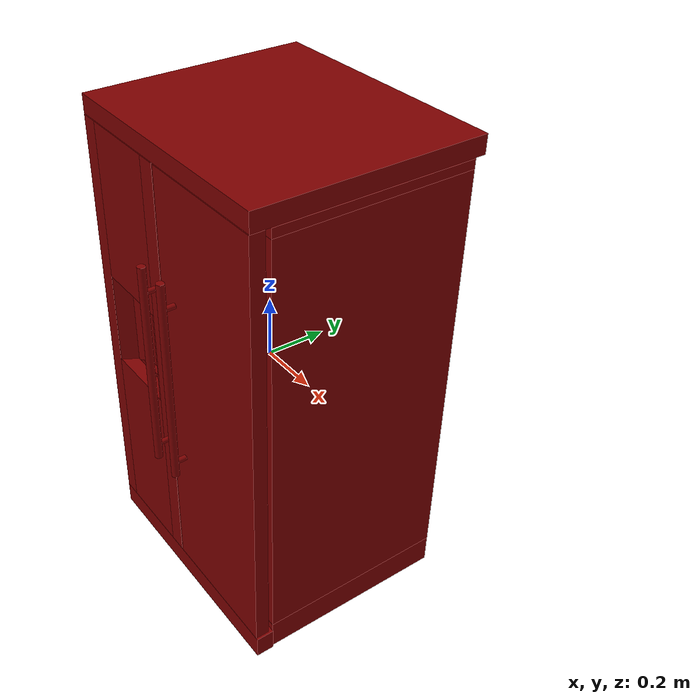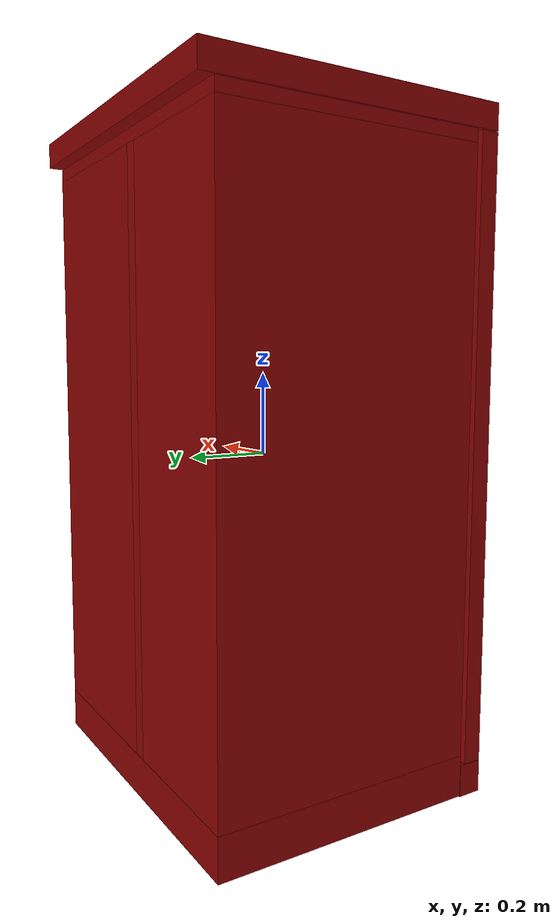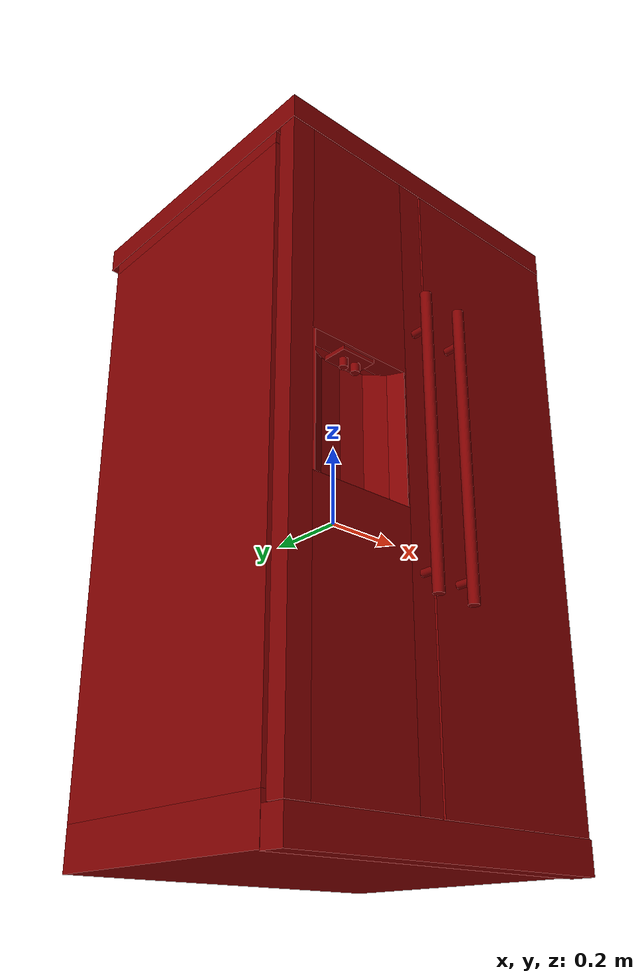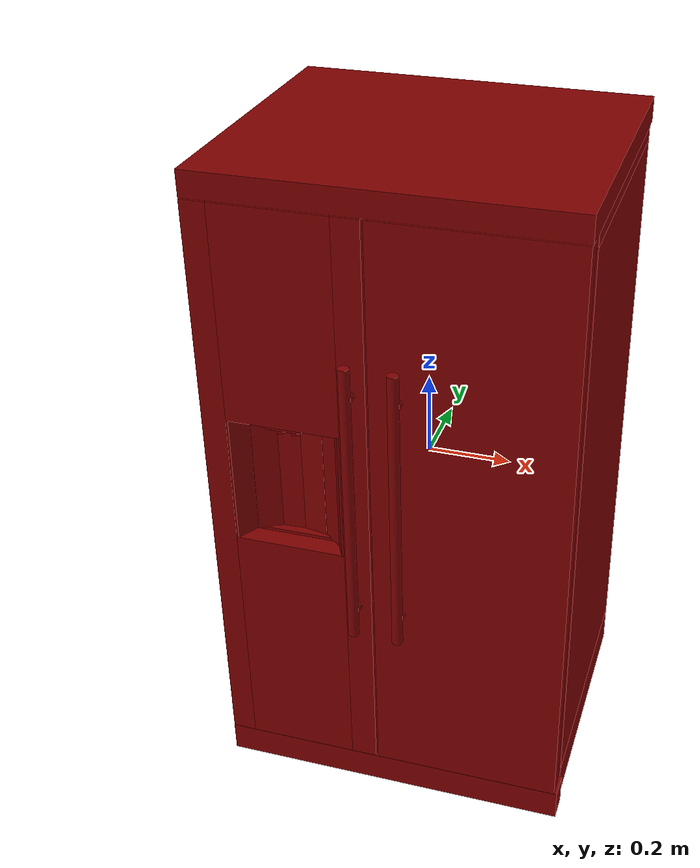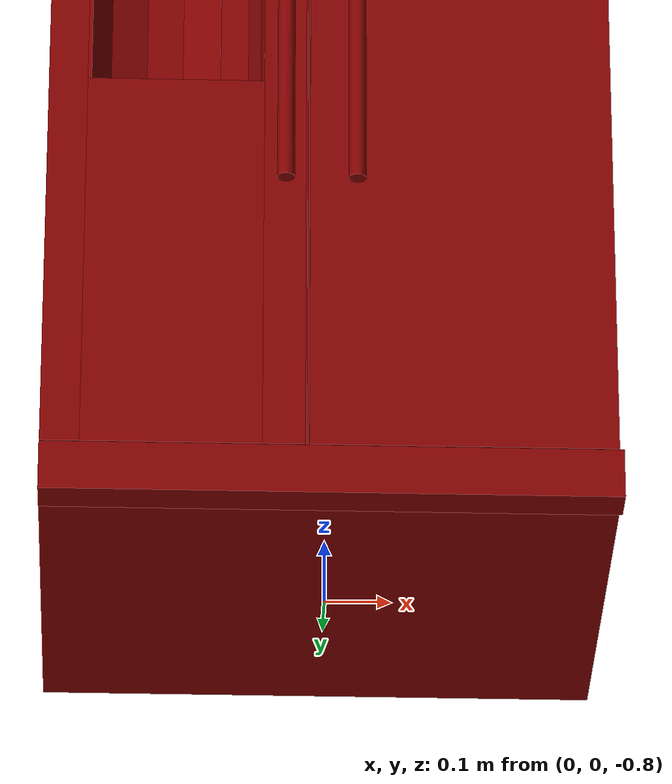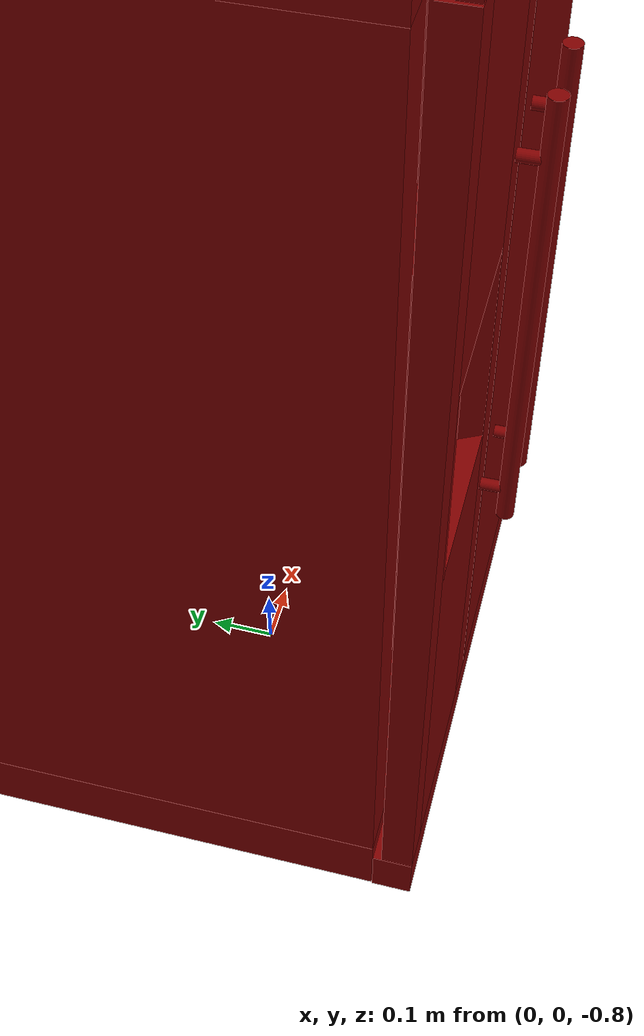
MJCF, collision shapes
<mujoco model="model">
  <compiler angle="radian"/>
  <asset>
    <mesh file="visuals/Body001.obj" name="Body001_vis"/>
    <mesh file="visuals/Body001_Clear.obj" name="Body001_Clear_vis"/>
    <mesh file="visuals/Door001.obj" name="Door001_vis"/>
    <mesh file="visuals/Door002.obj" name="Door002_vis"/>
    <mesh file="visuals/Drawer001.obj" name="Drawer001_vis"/>
    <mesh file="visuals/Drawer002.obj" name="Drawer002_vis"/>
    <mesh file="visuals/Drawer003.obj" name="Drawer003_vis"/>
    <mesh file="visuals/Drawer004.obj" name="Drawer004_vis"/>
    <texture file="visuals/T_BC001.png" name="Body001_material" type="2d"/>
    <material name="Body001_material" rgba="1 1 1 1.0" texture="Body001_material" shininess="0.5" specular="0.8"/>
    <texture file="visuals/T_BC001.png" name="Body001_Clear_material" type="2d"/>
    <material name="Body001_Clear_material" rgba="1 1 1 0.5272727012634277" texture="Body001_Clear_material" shininess="0.5" specular="0.8"/>
    <texture file="visuals/T_BC001.png" name="Door001_material" type="2d"/>
    <material name="Door001_material" rgba="1 1 1 1.0" texture="Door001_material" shininess="0.5" specular="0.8"/>
    <texture file="visuals/T_BC001.png" name="Door002_material" type="2d"/>
    <material name="Door002_material" rgba="1 1 1 1.0" texture="Door002_material" shininess="0.5" specular="0.8"/>
    <texture file="visuals/T_BC001.png" name="Drawer001_material" type="2d"/>
    <material name="Drawer001_material" rgba="1 1 1 1.0" texture="Drawer001_material" shininess="0.5" specular="0.8"/>
    <texture file="visuals/T_BC001.png" name="Drawer002_material" type="2d"/>
    <material name="Drawer002_material" rgba="1 1 1 1.0" texture="Drawer002_material" shininess="0.5" specular="0.8"/>
    <texture file="visuals/T_BC001.png" name="Drawer003_material" type="2d"/>
    <material name="Drawer003_material" rgba="1 1 1 1.0" texture="Drawer003_material" shininess="0.5" specular="0.8"/>
    <texture file="visuals/T_BC001.png" name="Drawer004_material" type="2d"/>
    <material name="Drawer004_material" rgba="1 1 1 1.0" texture="Drawer004_material" shininess="0.5" specular="0.8"/>
  </asset>
  <default>
    <default class="visual">
      <geom conaffinity="0" contype="0" group="1" type="mesh"/>
    </default>
    <default class="collision">
      <geom group="0" rgba="0.5 0 0 0.5"/>
    </default>
    <default class="spawn">
      <geom group="0" rgba="1 1 1 0.5" contype="0" conaffinity="0"/>
      <site group="0" rgba="1 1 1 0.5"/>
    </default>
    <default class="region">
      <geom group="1" conaffinity="0" contype="0" rgba="0 1 0 0"/>
    </default>
  </default>
  <worldbody>
    <body>
      <body name="object">
        <geom mesh="Body001_vis" type="mesh" solimp="0.998 0.998 0.001" solref="0.001 1" density="100" friction="0.95 0.3 0.1" class="visual" material="Body001_material"/>
        <geom class="collision" type="box" pos="0.384447 0.039981 0.005188" size="0.035853948444128036 0.322449654340744 0.6934295892715454" quat="1.0 0.0 0.0 0.0"/>
        <geom class="collision" type="box" pos="-0.002146 0.026179 0.760373" size="0.4224463999271393 0.36914530396461487 0.029827851802110672" quat="1.0 0.0 0.0 0.0"/>
        <geom class="collision" type="box" pos="-0.000047 -0.313338 -0.751950" size="0.4249330759048462 0.029750250279903412 0.03825020417571068" quat="1.0 0.0 0.0 0.0"/>
        <geom class="collision" type="box" pos="-0.002146 0.039981 0.713600" size="0.4224463105201721 0.32244962453842163 0.01498262956738472" quat="1.0 0.0 0.0 0.0"/>
        <geom class="collision" type="box" pos="-0.002146 0.039981 -0.737989" size="0.4224463105201721 0.32244962453842163 0.049747247248888016" quat="1.0 0.0 0.0 0.0"/>
        <geom class="collision" type="box" pos="-0.041779 0.042129 0.005596" size="0.018529389053583145 0.32030245661735535 0.6938378810882568" quat="1.0 0.0 0.0 0.0"/>
        <geom class="collision" type="box" pos="-0.390564 0.039981 0.005188" size="0.03402850031852722 0.322449654340744 0.6934296488761902" quat="1.0 0.0 0.0 0.0"/>
        <geom class="collision" type="box" pos="-0.002146 0.058520 0.379201" size="0.38787147402763367 0.27719253301620483 0.009626409038901329" quat="1.0 0.0 0.0 0.0"/>
        <geom class="collision" type="box" pos="-0.002146 0.059233 0.034679" size="0.38787147402763367 0.276479035615921 0.009626412764191628" quat="1.0 0.0 0.0 0.0"/>
        <geom class="collision" type="box" pos="-0.002146 0.056787 -0.292049" size="0.38787147402763367 0.2789252698421478 0.00909482128918171" quat="1.0 0.0 0.0 0.0"/>
        <geom class="collision" type="box" pos="-0.002146 0.351071 0.004949" size="0.4224463105201721 0.0113602876663208 0.6936686038970947" quat="1.0 0.0 0.0 0.0"/>
        <geom class="collision" type="box" pos="-0.005694 0.056787 -0.486730" size="0.3503202795982361 0.2789252698421478 0.0028798189014196396" quat="1.0 0.0 0.0 0.0"/>
        <body name="Body001_Clear">
          <geom mesh="Body001_Clear_vis" type="mesh" solimp="0.998 0.998 0.001" solref="0.001 1" density="100" friction="0.95 0.3 0.1" class="visual" material="Body001_Clear_material"/>
        </body>
        <body name="Door001">
          <joint axis="0.0 0.0 -1.0" pos="-0.396190 -0.327607 0.008800" limited="true" name="Door001_joint" range="0.0 1.5707963267948966" type="hinge" damping="1" frictionloss="1" armature=".01" stiffness="0.05"/>
          <geom mesh="Door001_vis" type="mesh" solimp="0.998 0.998 0.001" solref="0.001 1" density="100" friction="0.95 0.3 0.1" class="visual" material="Door001_material"/>
          <geom class="collision" type="cylinder" pos="-0.069935 -0.382677 0.063737" size="0.012895453721284866 0.3521200120449066" quat="1.0 0.0 0.0 0.0"/>
          <geom class="collision" type="cylinder" pos="-0.069935 -0.358617 0.328316" size="0.008896256797015667 0.019566046074032784" quat="0.7071068286895752 -0.7071067690849304 1.5700924318127872e-16 -5.9269340452702814e-24"/>
          <geom class="collision" type="cylinder" pos="-0.069935 -0.358617 -0.235202" size="0.008896256797015667 0.019566046074032784" quat="0.7071068286895752 -0.7071067690849304 1.5700924318127872e-16 -5.9269340452702814e-24"/>
          <geom class="collision" type="cylinder" pos="-0.250494 -0.306395 0.197417" size="0.010181399993598461 0.010181399993598461" quat="1.0 0.0 0.0 0.0"/>
          <geom class="collision" type="cylinder" pos="-0.217067 -0.306395 0.197417" size="0.010181399993598461 0.010181399993598461" quat="1.0 0.0 0.0 0.0"/>
          <geom class="collision" type="box" pos="-0.070247 -0.313268 0.007730" size="0.03128736466169357 0.029820457100868225 0.7201703786849976" quat="1.0 0.0 0.0 0.0"/>
          <geom class="collision" type="box" pos="-0.216668 -0.257458 0.131649" size="0.11925533413887024 0.003282485529780388 0.23824262619018555" quat="1.0 0.0 0.0 0.0"/>
          <geom class="collision" type="box" pos="-0.234156 -0.318759 0.472571" size="0.13262173533439636 0.02432965114712715 0.2553291320800781" quat="1.0 0.0 0.0 0.0"/>
          <geom class="collision" type="box" pos="-0.234156 -0.318759 -0.405989" size="0.13262173533439636 0.02432965114712715 0.3064519762992859" quat="1.0 0.0 0.0 0.0"/>
          <geom class="collision" type="box" pos="-0.395722 -0.319683 0.007730" size="0.028943806886672974 0.02340586483478546 0.7201703786849976" quat="1.0 0.0 0.0 0.0"/>
          <geom class="collision" type="box" pos="-0.104125 -0.270755 0.131649" size="0.0067124078050255775 0.015388263389468193 0.23824262619018555" quat="1.0 0.0 0.0 0.0"/>
          <geom class="collision" type="box" pos="-0.346023 -0.270755 0.131649" size="0.006712410133332014 0.015388268046081066 0.23824262619018555" quat="1.0 0.0 0.0 0.0"/>
          <geom class="collision" type="box" pos="-0.232658 -0.270755 0.360391" size="0.12181933969259262 0.015388261526823044 0.00950080156326294" quat="1.0 0.0 0.0 0.0"/>
          <geom class="collision" type="box" pos="-0.233484 -0.306259 0.212625" size="0.04262097552418709 0.029891489073634148 0.0052091944962739944" quat="1.0 0.0 0.0 0.0"/>
          <geom class="collision" type="box" pos="-0.349764 -0.316251 0.057580" size="0.003867596387863159 0.029820457100868225 0.15966156125068665" quat="0.966834306716919 0.0 -0.0 -0.25540444254875183"/>
          <geom class="collision" type="box" pos="-0.306785 -0.277688 0.057580" size="0.003867596387863159 0.029820457100868225 0.15966156125068665" quat="0.8436958193778992 0.0 -0.0 -0.5368215441703796"/>
          <geom class="collision" type="box" pos="-0.253131 -0.263256 0.057580" size="0.003867596387863159 0.029820457100868225 0.15966156125068665" quat="0.7231791019439697 0.0 -0.0 -0.6906605362892151"/>
          <geom class="collision" type="box" pos="-0.196052 -0.267210 0.057580" size="0.003867596387863159 0.029820457100868225 0.15966156125068665" quat="0.6374496817588806 0.0 -0.0 -0.7704920172691345"/>
          <geom class="collision" type="box" pos="-0.145048 -0.288207 0.057580" size="0.003867596387863159 0.029820457100868225 0.15966156125068665" quat="0.4350873529911041 0.0 -0.0 -0.900388240814209"/>
          <geom class="collision" type="box" pos="-0.117706 -0.315255 0.057580" size="0.003867596387863159 0.029820457100868225 0.15966156125068665" quat="0.2398415058851242 0.0 -0.0 -0.9708120822906494"/>
          <geom class="collision" type="box" pos="-0.231216 -0.271984 -0.107197" size="0.12037744373083115 0.015388283878564835 0.00950080156326294" quat="1.0 0.0 0.0 0.0"/>
        </body>
        <body name="Door002">
          <joint axis="0.0 0.0 1.0" pos="0.394987 -0.323332 0.008801" limited="true" name="Door002_joint" range="0.0 1.5707963267948966" type="hinge" damping="1" frictionloss="1" armature=".01" stiffness="0.05"/>
          <geom mesh="Door002_vis" type="mesh" solimp="0.998 0.998 0.001" solref="0.001 1" density="100" friction="0.95 0.3 0.1" class="visual" material="Door002_material"/>
          <geom class="collision" type="cylinder" pos="0.036185 -0.382677 0.063737" size="0.012895453721284866 0.3521200120449066" quat="1.0 0.0 0.0 0.0"/>
          <geom class="collision" type="cylinder" pos="0.036185 -0.358617 0.328316" size="0.008896256797015667 0.019566046074032784" quat="0.7071068286895752 -0.7071067690849304 1.5700924318127872e-16 -5.9269340452702814e-24"/>
          <geom class="collision" type="cylinder" pos="0.036185 -0.358617 -0.235202" size="0.008896256797015667 0.019566046074032784" quat="0.7071068286895752 -0.7071067690849304 1.5700924318127872e-16 -5.9269340452702814e-24"/>
          <geom class="collision" type="box" pos="0.192527 -0.319772 0.007730" size="0.22564460337162018 0.023316770792007446 0.7201703786849976" quat="1.0 0.0 0.0 0.0"/>
          <geom class="collision" type="box" pos="0.179985 -0.263814 0.392539" size="0.14785245060920715 0.028714507818222046 0.006003677845001221" quat="1.0 0.0 0.0 0.0"/>
          <geom class="collision" type="box" pos="0.170222 -0.295476 0.007730" size="0.20486129820346832 0.007539153099060059 0.7201703786849976" quat="1.0 0.0 0.0 0.0"/>
          <geom class="collision" type="box" pos="0.179985 -0.232848 0.431091" size="0.14785245060920715 0.0055883899331092834 0.035769760608673096" quat="1.0 0.0 0.0 0.0"/>
          <geom class="collision" type="box" pos="0.333036 -0.263814 0.426698" size="0.005198165774345398 0.028714507818222046 0.04016253352165222" quat="1.0 0.0 0.0 0.0"/>
          <geom class="collision" type="box" pos="0.025692 -0.263814 0.426698" size="0.006441004574298859 0.028714507818222046 0.04016253352165222" quat="1.0 0.0 0.0 0.0"/>
          <geom class="collision" type="box" pos="0.179985 -0.263814 0.171327" size="0.14785245060920715 0.028714507818222046 0.006003677845001221" quat="1.0 0.0 0.0 0.0"/>
          <geom class="collision" type="box" pos="0.179985 -0.232848 0.209879" size="0.14785245060920715 0.0055883899331092834 0.035769760608673096" quat="1.0 0.0 0.0 0.0"/>
          <geom class="collision" type="box" pos="0.333036 -0.263814 0.205486" size="0.005198165774345398 0.028714507818222046 0.04016253352165222" quat="1.0 0.0 0.0 0.0"/>
          <geom class="collision" type="box" pos="0.025692 -0.263814 0.205486" size="0.006441004574298859 0.028714507818222046 0.04016253352165222" quat="1.0 0.0 0.0 0.0"/>
        </body>
        <body name="Drawer001">
          <joint axis="0.0 -1.0 0.0" pos="-0.221807 0.067204 -0.397627" limited="true" name="Drawer001_joint" range="0.0 0.4" type="slide" damping="1" frictionloss="1" armature=".01" stiffness="0.05"/>
          <geom mesh="Drawer001_vis" type="mesh" solimp="0.998 0.998 0.001" solref="0.001 1" density="100" friction="0.95 0.3 0.1" class="visual" material="Drawer001_material"/>
          <geom class="collision" type="box" pos="-0.075583 0.053689 -0.397243" size="0.014491543173789978 0.26361486315727234 0.0834193155169487" quat="1.0 0.0 0.0 0.0"/>
          <geom class="collision" type="box" pos="-0.339817 0.053689 -0.397243" size="0.014491543173789978 0.26361486315727234 0.0834193155169487" quat="1.0 0.0 0.0 0.0"/>
          <geom class="collision" type="box" pos="-0.207270 0.310766 -0.397243" size="0.1455812156200409 0.014491554349660873 0.0834193006157875" quat="1.0 0.0 0.0 0.0"/>
          <geom class="collision" type="box" pos="-0.207962 0.053689 -0.466983" size="0.14472800493240356 0.26361367106437683 0.014491483569145203" quat="1.0 0.0 0.0 0.0"/>
          <geom class="collision" type="box" pos="-0.207728 -0.207921 -0.331549" size="0.1183638945221901 0.002435504226014018 0.01742434874176979" quat="1.0 0.0 0.0 0.0"/>
          <geom class="collision" type="box" pos="-0.207728 -0.198197 -0.420944" size="0.11836452782154083 0.011783481575548649 0.03304709866642952" quat="1.0 0.0 0.0 0.0"/>
          <geom class="collision" type="box" pos="-0.207728 -0.184131 -0.383586" size="0.11836390942335129 0.002435503527522087 0.06916751712560654" quat="1.0 0.0 0.0 0.0"/>
          <geom class="collision" type="box" pos="-0.106545 -0.196284 -0.355394" size="0.017714573070406914 0.01419044379144907 0.0314192958176136" quat="1.0 0.0 0.0 0.0"/>
          <geom class="collision" type="box" pos="-0.310585 -0.196284 -0.355394" size="0.017714573070406914 0.014190444722771645 0.0314192958176136" quat="1.0 0.0 0.0 0.0"/>
          <geom class="collision" type="box" pos="-0.208689 -0.185103 -0.359549" size="0.08508295565843582 0.0032333543058484793 0.030308986082673073" quat="1.0 0.0 0.0 0.0"/>
          <geom class="collision" type="box" pos="-0.207728 -0.196354 -0.323737" size="0.11836446821689606 0.009998190216720104 0.009799218736588955" quat="1.0 0.0 0.0 0.0"/>
        </body>
        <body name="Drawer002">
          <joint axis="0.0 -1.0 0.0" pos="-0.221807 0.067204 -0.578172" limited="true" name="Drawer002_joint" range="0.0 0.4" type="slide" damping="1" frictionloss="1" armature=".01" stiffness="0.05"/>
          <geom mesh="Drawer002_vis" type="mesh" solimp="0.998 0.998 0.001" solref="0.001 1" density="100" friction="0.95 0.3 0.1" class="visual" material="Drawer002_material"/>
          <geom class="collision" type="box" pos="-0.075583 0.053689 -0.576869" size="0.014491543173789978 0.26361486315727234 0.0834193155169487" quat="1.0 0.0 0.0 0.0"/>
          <geom class="collision" type="box" pos="-0.339817 0.053689 -0.576869" size="0.014491543173789978 0.26361486315727234 0.0834193155169487" quat="1.0 0.0 0.0 0.0"/>
          <geom class="collision" type="box" pos="-0.207270 0.310766 -0.576869" size="0.1455812156200409 0.014491554349660873 0.0834193006157875" quat="1.0 0.0 0.0 0.0"/>
          <geom class="collision" type="box" pos="-0.207962 0.053689 -0.646608" size="0.14472800493240356 0.2636139392852783 0.014491499401628971" quat="1.0 0.0 0.0 0.0"/>
          <geom class="collision" type="box" pos="-0.207728 -0.207921 -0.511175" size="0.1183638945221901 0.002435500267893076 0.017424333840608597" quat="1.0 0.0 0.0 0.0"/>
          <geom class="collision" type="box" pos="-0.207728 -0.198197 -0.600570" size="0.1183643713593483 0.011783481575548649 0.03304706886410713" quat="1.0 0.0 0.0 0.0"/>
          <geom class="collision" type="box" pos="-0.207728 -0.184131 -0.563212" size="0.11836390942335129 0.002435499569401145 0.06916751712560654" quat="1.0 0.0 0.0 0.0"/>
          <geom class="collision" type="box" pos="-0.106545 -0.196284 -0.535019" size="0.017714573070406914 0.014190453104674816 0.0314192958176136" quat="1.0 0.0 0.0 0.0"/>
          <geom class="collision" type="box" pos="-0.310585 -0.196284 -0.535019" size="0.017714573070406914 0.01419045403599739 0.0314192958176136" quat="1.0 0.0 0.0 0.0"/>
          <geom class="collision" type="box" pos="-0.208689 -0.185103 -0.539175" size="0.08508295565843582 0.0032333543058484793 0.030308986082673073" quat="1.0 0.0 0.0 0.0"/>
          <geom class="collision" type="box" pos="-0.207728 -0.196354 -0.503363" size="0.11836431175470352 0.009998190216720104 0.009799210354685783" quat="1.0 0.0 0.0 0.0"/>
        </body>
        <body name="Drawer003">
          <joint axis="0.0 -1.0 0.0" pos="0.175621 0.067204 -0.397627" limited="true" name="Drawer003_joint" range="0.0 0.4" type="slide" damping="1" frictionloss="1" armature=".01" stiffness="0.05"/>
          <geom mesh="Drawer003_vis" type="mesh" solimp="0.998 0.998 0.001" solref="0.001 1" density="100" friction="0.95 0.3 0.1" class="visual" material="Drawer003_material"/>
          <geom class="collision" type="box" pos="0.321901 0.053689 -0.396298" size="0.014491543173789978 0.26361486315727234 0.0834193155169487" quat="1.0 0.0 0.0 0.0"/>
          <geom class="collision" type="box" pos="-0.001311 0.053689 -0.396298" size="0.014491543173789978 0.26361486315727234 0.0834193155169487" quat="1.0 0.0 0.0 0.0"/>
          <geom class="collision" type="box" pos="0.165343 0.310766 -0.396298" size="0.1455812156200409 0.014491554349660873 0.0834193006157875" quat="1.0 0.0 0.0 0.0"/>
          <geom class="collision" type="box" pos="0.164651 0.053689 -0.466038" size="0.14472800493240356 0.2636142373085022 0.014491516165435314" quat="1.0 0.0 0.0 0.0"/>
          <geom class="collision" type="box" pos="0.164885 -0.207921 -0.330604" size="0.1183638945221901 0.002435496309772134 0.017424317076802254" quat="1.0 0.0 0.0 0.0"/>
          <geom class="collision" type="box" pos="0.164885 -0.198197 -0.419999" size="0.14797642827033997 0.011783466674387455 0.03304697945713997" quat="1.0 0.0 0.0 0.0"/>
          <geom class="collision" type="box" pos="0.164885 -0.184131 -0.382641" size="0.11836390942335129 0.002435495611280203 0.06916751712560654" quat="1.0 0.0 0.0 0.0"/>
          <geom class="collision" type="box" pos="0.278398 -0.196284 -0.354449" size="0.027425065636634827 0.014190511777997017 0.03141935169696808" quat="1.0 0.0 0.0 0.0"/>
          <geom class="collision" type="box" pos="0.032389 -0.196284 -0.354449" size="0.017714573070406914 0.014190463349223137 0.0314192958176136" quat="1.0 0.0 0.0 0.0"/>
          <geom class="collision" type="box" pos="0.163924 -0.185103 -0.358604" size="0.10063748806715012 0.0032333543058484793 0.030308986082673073" quat="1.0 0.0 0.0 0.0"/>
          <geom class="collision" type="box" pos="0.164885 -0.196354 -0.322792" size="0.14914390444755554 0.009998197667300701 0.009799190796911716" quat="1.0 0.0 0.0 0.0"/>
        </body>
        <body name="Drawer004">
          <joint axis="0.0 -1.0 0.0" pos="0.175621 0.067204 -0.578172" limited="true" name="Drawer004_joint" range="0.0 0.4" type="slide" damping="1" frictionloss="1" armature=".01" stiffness="0.05"/>
          <geom mesh="Drawer004_vis" type="mesh" solimp="0.998 0.998 0.001" solref="0.001 1" density="100" friction="0.95 0.3 0.1" class="visual" material="Drawer004_material"/>
          <geom class="collision" type="box" pos="0.321901 0.053689 -0.575748" size="0.014491543173789978 0.26361486315727234 0.0834193155169487" quat="1.0 0.0 0.0 0.0"/>
          <geom class="collision" type="box" pos="-0.001311 0.053689 -0.575748" size="0.014491543173789978 0.26361486315727234 0.0834193155169487" quat="1.0 0.0 0.0 0.0"/>
          <geom class="collision" type="box" pos="0.165343 0.310766 -0.575748" size="0.1455812156200409 0.014491554349660873 0.0834193006157875" quat="1.0 0.0 0.0 0.0"/>
          <geom class="collision" type="box" pos="0.164651 0.053689 -0.645487" size="0.14472800493240356 0.2636145055294037 0.014491531997919083" quat="1.0 0.0 0.0 0.0"/>
          <geom class="collision" type="box" pos="0.164885 -0.207921 -0.510054" size="0.1183638945221901 0.0024354923516511917 0.01742430217564106" quat="1.0 0.0 0.0 0.0"/>
          <geom class="collision" type="box" pos="0.164885 -0.198197 -0.599449" size="0.14797642827033997 0.011783475987613201 0.03304697945713997" quat="1.0 0.0 0.0 0.0"/>
          <geom class="collision" type="box" pos="0.164885 -0.184131 -0.562090" size="0.11836390942335129 0.0024354916531592607 0.06916751712560654" quat="1.0 0.0 0.0 0.0"/>
          <geom class="collision" type="box" pos="0.278398 -0.196284 -0.533898" size="0.027425037696957588 0.014190496876835823 0.03141932189464569" quat="1.0 0.0 0.0 0.0"/>
          <geom class="collision" type="box" pos="0.032389 -0.196284 -0.533898" size="0.017714573070406914 0.014190473593771458 0.0314192958176136" quat="1.0 0.0 0.0 0.0"/>
          <geom class="collision" type="box" pos="0.147891 -0.185103 -0.538053" size="0.10239453613758087 0.0032333526760339737 0.030308986082673073" quat="1.0 0.0 0.0 0.0"/>
          <geom class="collision" type="box" pos="0.164885 -0.196354 -0.502241" size="0.14914390444755554 0.009998197667300701 0.009799190796911716" quat="1.0 0.0 0.0 0.0"/>
        </body>
        <geom class="region" name="reg_main" type="box" pos="0.0 0.0246875 0.0" size="0.42502 0.37063650000000004 0.7902"/>
      </body>
    </body>
  </worldbody>
  <actuator>
    <motor name="Door001_joint_actuator" joint="Door001_joint" gear="50"/>
    <motor name="Door002_joint_actuator" joint="Door002_joint" gear="50"/>
    <motor name="Drawer001_joint_actuator" joint="Drawer001_joint" gear="50"/>
    <motor name="Drawer002_joint_actuator" joint="Drawer002_joint" gear="50"/>
    <motor name="Drawer003_joint_actuator" joint="Drawer003_joint" gear="50"/>
    <motor name="Drawer004_joint_actuator" joint="Drawer004_joint" gear="50"/>
  </actuator>
</mujoco>
